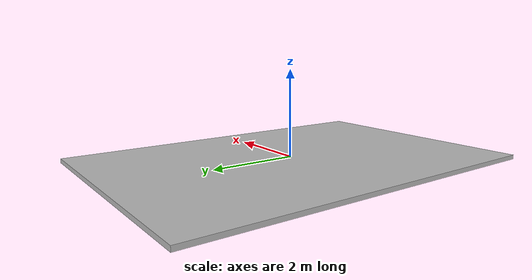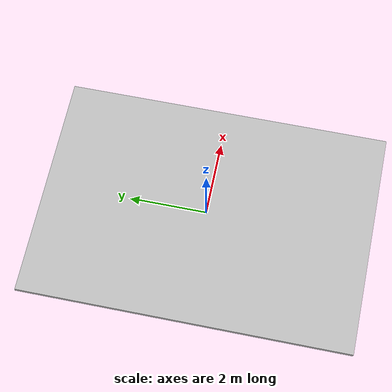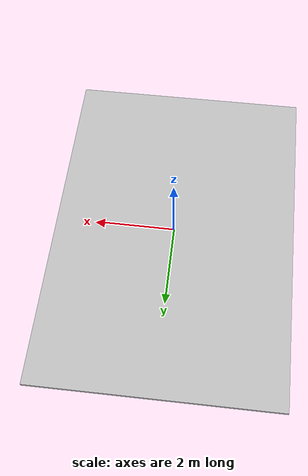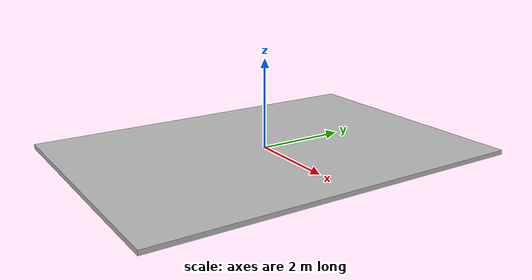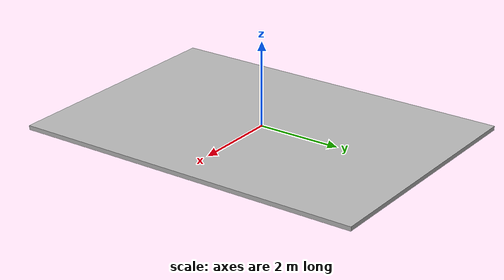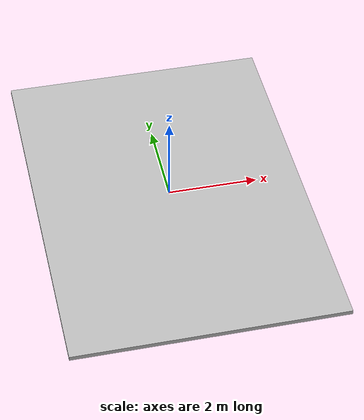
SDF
<?xml version="1.0" ?>
<sdf version="1.6">
  <model name="pisosala_oval">
    <static>true</static>
    <link name="course_link">
      <collision name="course_collision">
        <geometry>
          <plane>
            <normal>0 0 1</normal>
            <size>2 1.5</size>
          </plane>
        </geometry>
        <surface>
          <friction>
            <ode>
              <mu>100</mu>
              <mu2>50</mu2>
            </ode>
          </friction>
        </surface>
      </collision>
      <visual name="course_visual">
        <cast_shadows>false</cast_shadows>
        <geometry>
          <mesh>
            <uri>model://pista_oval/pisosala/materials/scripts/piso.dae</uri>
            <scale>1 1 1</scale>
          </mesh>
        </geometry>
      </visual>
    </link>
  </model>
</sdf>
